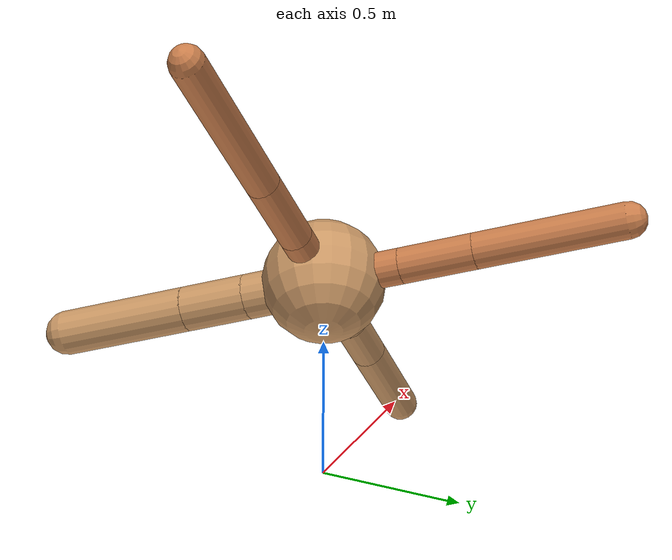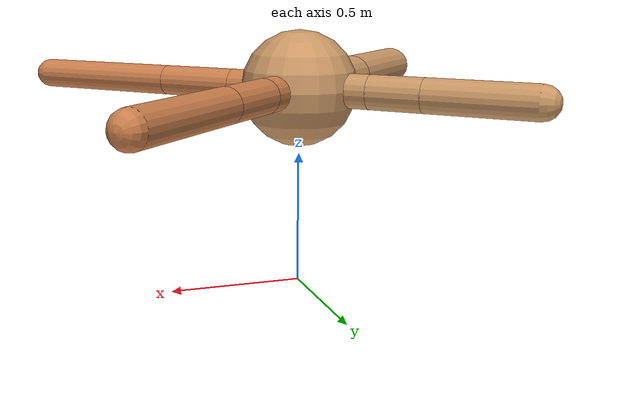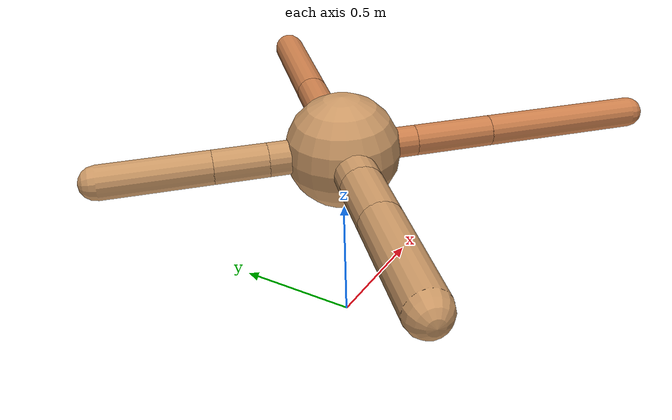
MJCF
<?xml version="1.0" ?>
<mujoco model="ant">

	<compiler angle="degree" coordinate="local" inertiafromgeom="true"/>

	<option integrator="RK4" timestep="0.01"/>

	<custom>

		<numeric data="0.0 0.0 0.55 1.0 0.0 0.0 0.0 0.0 1.0 0.0 -1.0 0.0 -1.0 0.0 1.0" name="init_qpos"/>

	</custom>

	<default>

		<joint armature="1" damping="1" limited="true"/>

		<geom conaffinity="0" condim="3" density="5.0" friction="1.5 0.1 0.1" margin="0.01" rgba="0.8 0.6 0.4 1"/>

	</default>

	<worldbody>

		<body name="torso" pos="0 0 0.75">

			<geom name="torso_geom" pos="0 0 0" size="0.2177029829233675" type="sphere"/>

			<!--joint armature="0" damping="0" limited="false" margin="0.01" name="root" pos="0 0 0" type="free"/-->

			<body name="front_left_leg" pos="0 0 0">

				<geom fromto="0 0 0 0.2 0.2 0" name="aux_1_geom" size="0.06409067573907933" type="capsule" rgba=".8 .5 .3 1"/>

				<body name="aux_1" pos="0.2 0.2 0">

					<joint axis="0 0 1" name="hip_1" pos="0.0 0.0 0.0" range="-40 40" type="hinge"/>

					<geom fromto="0 0 0 0.1855503440037132 0.1855503440037132 0" name="left_leg_geom" size="0.06409067573907933" type="capsule" rgba=".8 .5 .3 1"/>

					<body pos="0.1855503440037132 0.1855503440037132 0" name="front_left_foot">

						<joint axis="-1 1 0" name="ankle_1" pos="0.0 0.0 0.0" range="30 100" type="hinge"/>

						<geom fromto="0 0 0 0.3711006880074264 0.3711006880074264 0" name="left_ankle_geom" size="0.06409067573907933" type="capsule" rgba=".8 .5 .3 1"/>

					</body>

				</body>

			</body>

			<body name="front_right_leg" pos="0 0 0">

				<geom fromto="0 0 0 -0.2 0.2 0" name="aux_2_geom" size="0.06379872164660493" type="capsule"/>

				<body name="aux_2" pos="-0.2 0.2 0">

					<joint axis="0 0 1" name="hip_2" pos="0.0 0.0 0.0" range="-40 40" type="hinge"/>

					<geom fromto="0 0 0 -0.14287692352371198 0.14287692352371198 0" name="right_leg_geom" size="0.06379872164660493" type="capsule"/>

					<body pos="-0.14287692352371198 0.14287692352371198 0" name="front_right_foot">

						<joint axis="1 1 0" name="ankle_2" pos="0.0 0.0 0.0" range="-100 -30" type="hinge"/>

						<geom fromto="0 0 0 -0.28575384704742396 0.28575384704742396 0" name="right_ankle_geom" size="0.06379872164660493" type="capsule"/>

					</body>

				</body>

			</body>

			<body name="left_back_leg" pos="0 0 0">

				<geom fromto="0 0 0 -0.2 -0.2 0" name="aux_3_geom" size="0.08115371404457751" type="capsule"/>

				<body name="aux_3" pos="-0.2 -0.2 0">

					<joint axis="0 0 1" name="hip_3" pos="0.0 0.0 0.0" range="-40 40" type="hinge"/>

					<geom fromto="0 0 0 -0.16661078711912453 -0.16661078711912453 0" name="back_leg_geom" size="0.08115371404457751" type="capsule"/>

					<body pos="-0.16661078711912453 -0.16661078711912453 0" name="left_back_foot">

						<joint axis="-1 1 0" name="ankle_3" pos="0.0 0.0 0.0" range="-100 -30" type="hinge"/>

						<geom fromto="0 0 0 -0.33322157423824905 -0.33322157423824905 0" name="third_ankle_geom" size="0.08115371404457751" type="capsule"/>

					</body>

				</body>

			</body>

			<body name="right_back_leg" pos="0 0 0">

				<geom fromto="0 0 0 0.2 -0.2 0" name="aux_4_geom" size="0.058346245279932527" type="capsule" rgba=".8 .5 .3 1"/>

				<body name="aux_4" pos="0.2 -0.2 0">

					<joint axis="0 0 1" name="hip_4" pos="0.0 0.0 0.0" range="-40 40" type="hinge"/>

					<geom fromto="0 0 0 0.2137527225951431 -0.2137527225951431 0" name="rightback_leg_geom" size="0.058346245279932527" type="capsule" rgba=".8 .5 .3 1"/>

					<body pos="0.2137527225951431 -0.2137527225951431 0" name="right_back_foot">

						<joint axis="1 1 0" name="ankle_4" pos="0.0 0.0 0.0" range="30 100" type="hinge"/>

						<geom fromto="0 0 0 0.4275054451902862 -0.4275054451902862 0" name="fourth_ankle_geom" size="0.058346245279932527" type="capsule" rgba=".8 .5 .3 1"/>

					</body>

				</body>

			</body>

		</body>

	</worldbody>

	<actuator>

		<motor ctrllimited="true" ctrlrange="-1.0 1.0" joint="hip_4" gear="150"/>

		<motor ctrllimited="true" ctrlrange="-1.0 1.0" joint="ankle_4" gear="150"/>

		<motor ctrllimited="true" ctrlrange="-1.0 1.0" joint="hip_1" gear="150"/>

		<motor ctrllimited="true" ctrlrange="-1.0 1.0" joint="ankle_1" gear="150"/>

		<motor ctrllimited="true" ctrlrange="-1.0 1.0" joint="hip_2" gear="150"/>

		<motor ctrllimited="true" ctrlrange="-1.0 1.0" joint="ankle_2" gear="150"/>

		<motor ctrllimited="true" ctrlrange="-1.0 1.0" joint="hip_3" gear="150"/>

		<motor ctrllimited="true" ctrlrange="-1.0 1.0" joint="ankle_3" gear="150"/>

	</actuator>

</mujoco>
